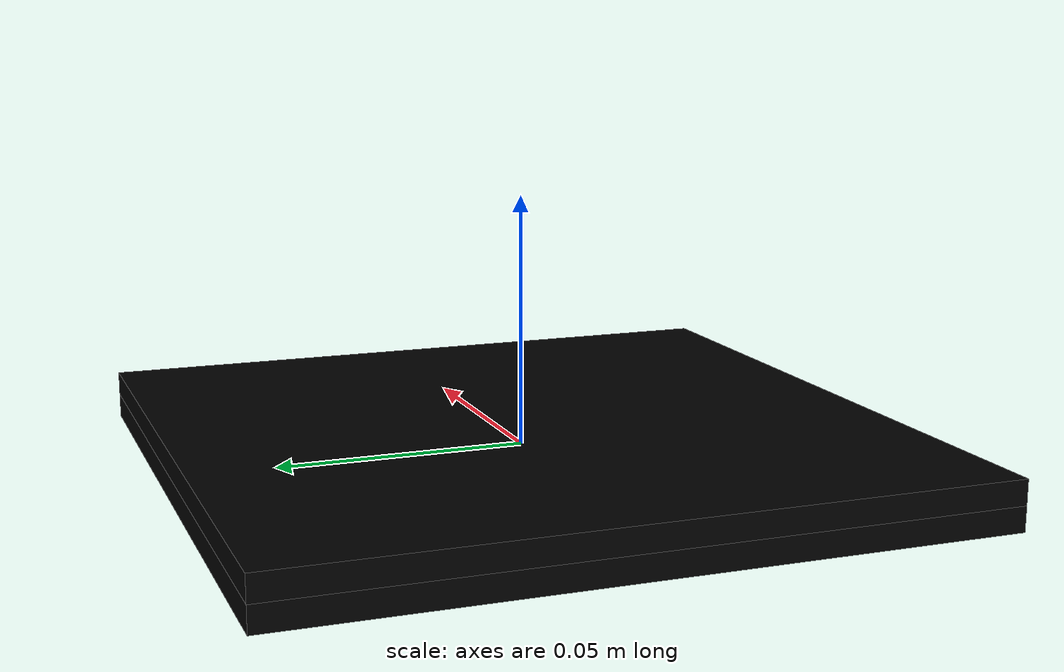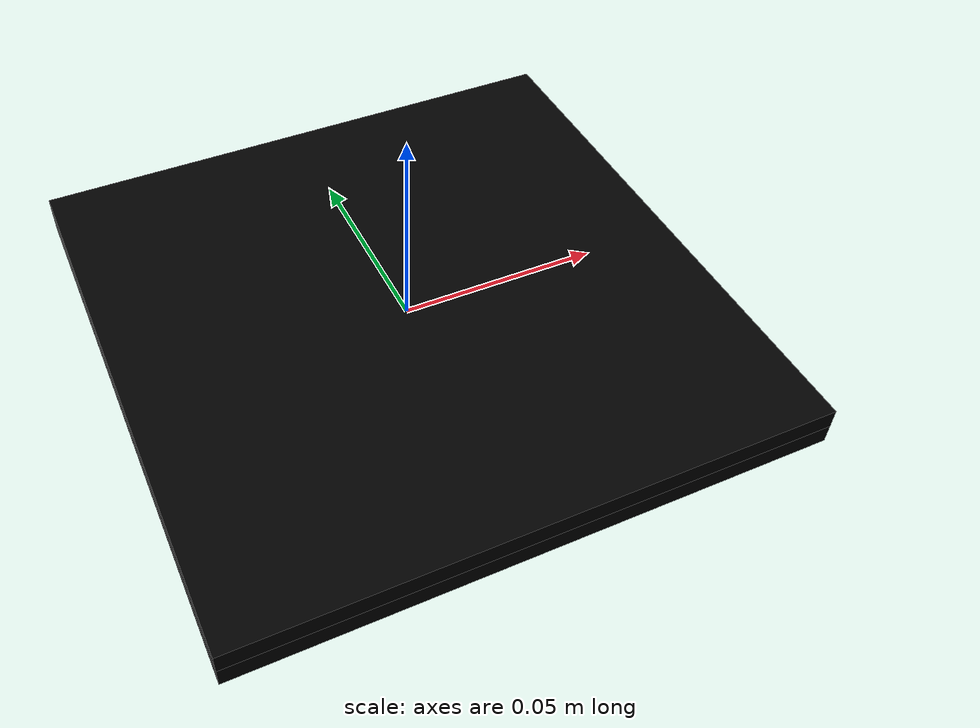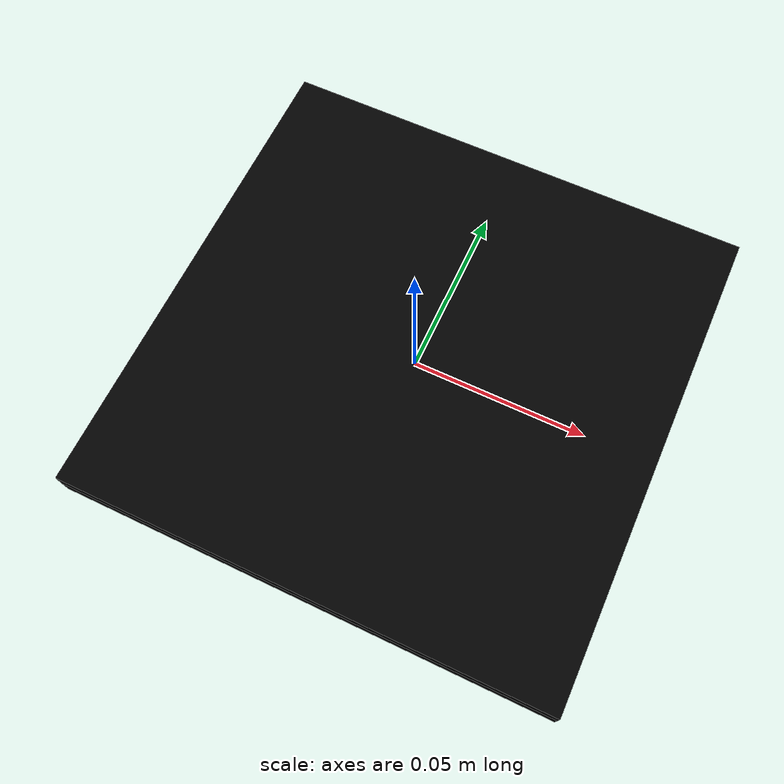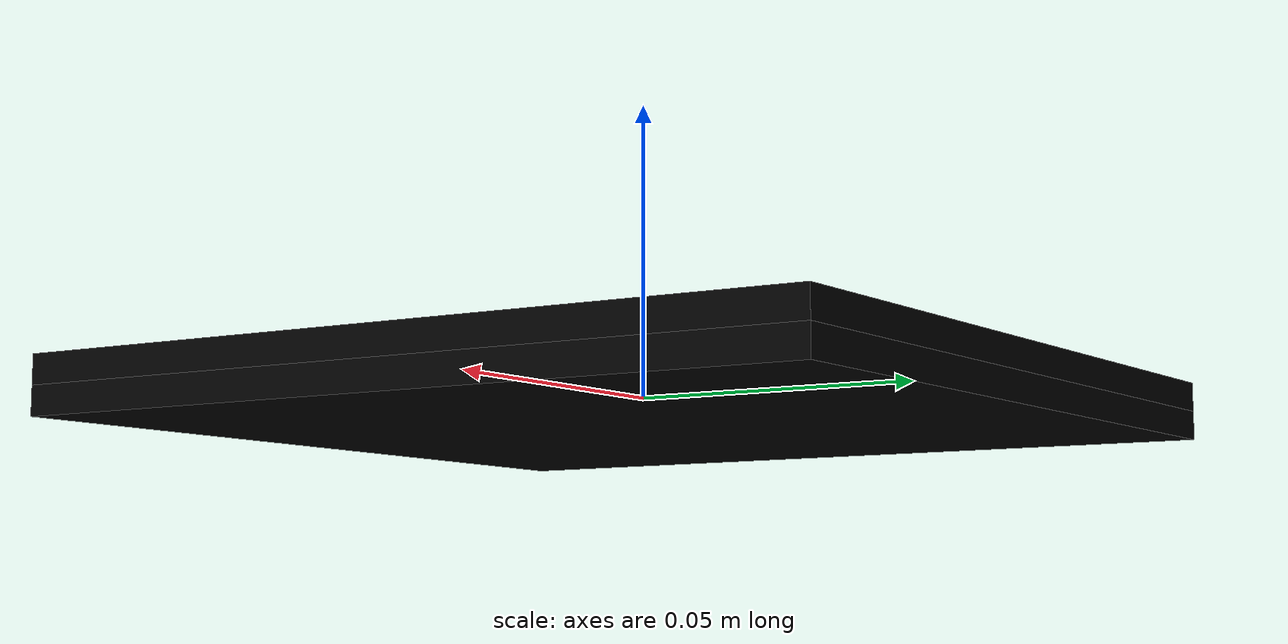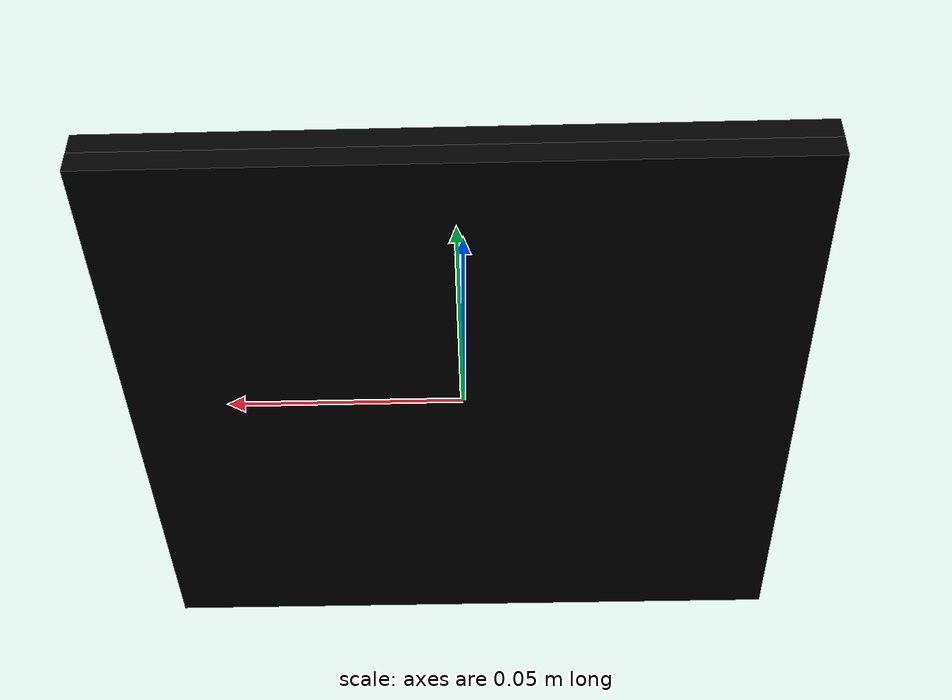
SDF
<?xml version='1.0'?>
<sdf version='1.6'>
  <model name='aruco_plain_1'> <!-- CHANGE THIS FOR NEW ARUCO -->
    <link name='robot_link'>
      <self_collide>0</self_collide>
      <enable_wind>0</enable_wind>
      <kinematic>0</kinematic>
      <pose frame=''>0 0 0 0 -0 0</pose>
      <gravity>1</gravity>
      <inertial>
        <mass>1</mass>
        <pose frame=''>0 0 0 0 -0 0</pose>
        <inertia>
          <ixx>1</ixx>
          <ixy>0</ixy>
          <ixz>0</ixz>
          <iyy>1</iyy>
          <iyz>0</iyz>
          <izz>1</izz>
        </inertia>
      </inertial>
      <visual name='front_visual'>
        <pose frame=''>0 0 0.0025 0 -0 0</pose>
        <geometry>
          <box>
            <size>0.14 0.14 0.005</size>
          </box>
        </geometry>
        <material>
          <lighting>1</lighting>
          <script>
            <uri>model://aruco_plain_1/materials/scripts</uri> <!-- CHANGE THIS FOR NEW ARUCO -->
            <uri>model://aruco_plain_1/materials/textures</uri> <!-- CHANGE THIS FOR NEW ARUCO -->
            <name>Aruco/Id1</name> <!-- CHANGE THIS FOR NEW ARUCO -->
          </script>
          <shader type='vertex'>
            <normal_map>__default__</normal_map>
          </shader>
          <ambient>0 0 0 1</ambient>
          <diffuse>0 0 0 1</diffuse>
          <specular>0 0 0 0</specular>
          <emissive>1 1 1 1</emissive>
        </material>
        <transparency>0</transparency>
        <cast_shadows>1</cast_shadows>
      </visual>
      <visual name='rear_visual'>
        <pose frame=''>0 0 -0.0025 0 -0 0</pose>
        <geometry>
          <box>
            <size>0.14 0.14 0.005</size>
          </box>
        </geometry>
        <transparency>0</transparency>
        <cast_shadows>1</cast_shadows>
        <material>
          <shader type='vertex'>
            <normal_map>__default__</normal_map>
          </shader>
          <script>
            <name>ModelPreview_1::robot_link::rear_visual_MATERIAL_</name>
            <uri>__default__</uri>
          </script>
          <ambient>0 0 0 1</ambient>
          <diffuse>0 0 0 1</diffuse>
          <specular>0 0 0 1</specular>
          <emissive>0 0 0 1</emissive>
        </material>
      </visual>
    </link>
    <static>1</static>
    <allow_auto_disable>1</allow_auto_disable>
  </model>
</sdf>
